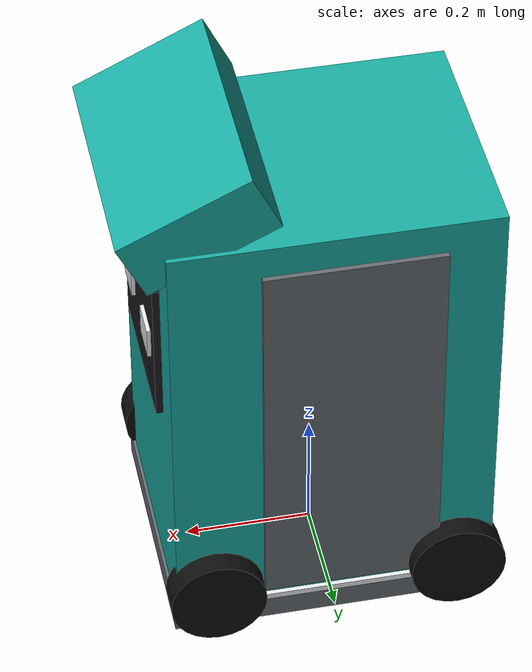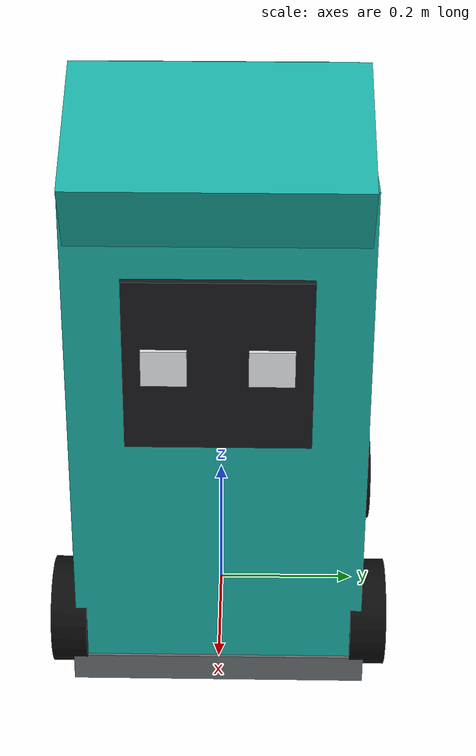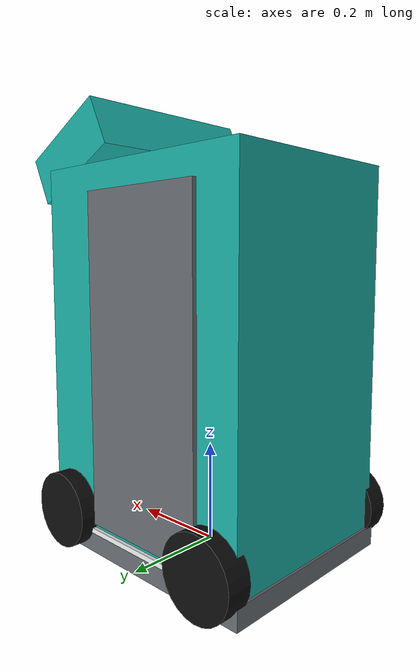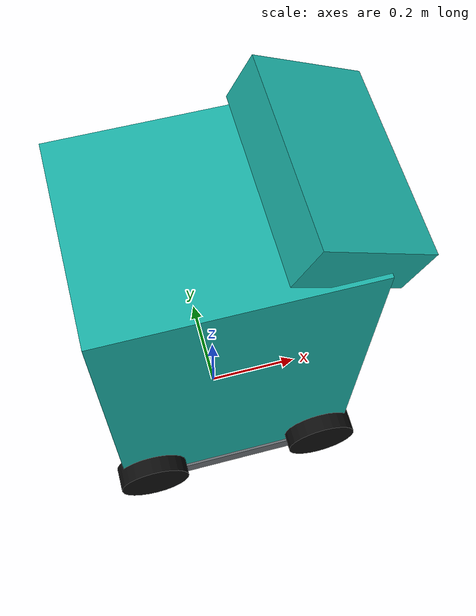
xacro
<?xml version="1.0"?>
<robot xmlns:xacro="http://www.ros.org/wiki/xacro">

  <xacro:property name="chassis_x" value="0.50"/>
  <xacro:property name="chassis_y" value="0.40"/>
  <xacro:property name="chassis_z" value="0.75"/>
  <xacro:property name="chassis_mass" value="35.0"/>

  <xacro:property name="wheel_radius" value="0.075"/>
  <xacro:property name="wheel_width" value="0.05"/>
  <xacro:property name="wheel_mass" value="1.2"/>

  <!-- half-distances between wheel contact points -->
  <xacro:property name="wheel_sep_x" value="0.19"/>
  <xacro:property name="wheel_sep_y" value="0.21"/>

  <material name="libbot_body_teal">
    <color rgba="0.10 0.68 0.64 1.0"/>
  </material>
  <material name="libbot_body_grey">
    <color rgba="0.40 0.42 0.44 1.0"/>
  </material>
  <material name="libbot_panel_dark">
    <color rgba="0.10 0.10 0.11 1.0"/>
  </material>
  <material name="libbot_wheel_black">
    <color rgba="0.05 0.05 0.05 1.0"/>
  </material>
  <material name="libbot_seam_white">
    <color rgba="0.92 0.93 0.94 1.0"/>
  </material>

  <xacro:macro name="box_inertia" params="mass x y z">
    <inertia
      ixx="${mass/12.0*(y*y+z*z)}" ixy="0.0" ixz="0.0"
      iyy="${mass/12.0*(x*x+z*z)}" iyz="0.0"
      izz="${mass/12.0*(x*x+y*y)}"/>
  </xacro:macro>

  <xacro:macro name="cylinder_inertia" params="mass r h">
    <inertia
      ixx="${mass/12.0*(3*r*r+h*h)}" ixy="0.0" ixz="0.0"
      iyy="${mass/12.0*(3*r*r+h*h)}" iyz="0.0"
      izz="${mass/2.0*r*r}"/>
  </xacro:macro>

  <!-- base_footprint: ground projection, required by nav2 / robot_localization conventions -->
  <link name="base_footprint"/>

  <joint name="base_footprint_joint" type="fixed">
    <parent link="base_footprint"/>
    <child link="base_link"/>
    <origin xyz="0 0 ${chassis_z/2}" rpy="0 0 0"/>
  </joint>

  <link name="base_link">
    <visual>
      <origin xyz="0 0 0" rpy="0 0 0"/>
      <geometry>
        <box size="${chassis_x} ${chassis_y} ${chassis_z}"/>
      </geometry>
      <material name="libbot_body_teal"/>
    </visual>
    <collision>
      <origin xyz="0 0 0" rpy="0 0 0"/>
      <geometry>
        <box size="${chassis_x} ${chassis_y} ${chassis_z}"/>
      </geometry>
    </collision>
    <inertial>
      <origin xyz="0 0 -0.25" rpy="0 0 0"/>
      <mass value="${chassis_mass}"/>
      <inertia ixx="6.0" ixy="0.0" ixz="0.0" iyy="8.0" iyz="0.0" izz="1.196"/>
    </inertial>
  </link>

  <!-- Dark grey skirt band around the lower chassis, like the reference
       robot's lower bumper/trim band. -->
  <link name="chassis_skirt_link">
    <visual>
      <geometry><box size="${chassis_x + 0.01} ${chassis_y + 0.01} 0.04"/></geometry>
      <material name="libbot_body_grey"/>
    </visual>
  </link>
  <joint name="chassis_skirt_joint" type="fixed">
    <parent link="base_link"/>
    <child link="chassis_skirt_link"/>
    <origin xyz="0 0 ${-chassis_z/2 + 0.02}" rpy="0 0 0"/>
  </joint>

  <!-- Seam line between the grey skirt and the teal shell. -->
  <link name="deck_stripe_link">
    <visual>
      <geometry><box size="${chassis_x + 0.005} 0.015 0.01"/></geometry>
      <material name="libbot_seam_white"/>
    </visual>
  </link>
  <joint name="deck_stripe_joint" type="fixed">
    <parent link="base_link"/>
    <child link="deck_stripe_link"/>
    <origin xyz="0 ${chassis_y/2} ${-chassis_z/2 + 0.045}" rpy="0 0 0"/>
  </joint>

  <!-- Sloped front-top fascia (a rotated box, approximating the
       reference's angled canopy front) sitting proud of the main box on
       the forward edge. -->
  <link name="chassis_fascia_link">
    <visual>
      <geometry><box size="0.22 ${chassis_y*0.96} 0.10"/></geometry>
      <material name="libbot_body_teal"/>
    </visual>
  </link>
  <joint name="chassis_fascia_joint" type="fixed">
    <parent link="base_link"/>
    <child link="chassis_fascia_link"/>
    <origin xyz="${chassis_x/2 - 0.05} 0 ${chassis_z/2 + 0.03}" rpy="0 0.45 0"/>
  </joint>

  <link name="chassis_face_link">
    <visual>
      <geometry><box size="0.02 ${chassis_y*0.62} ${chassis_z*0.32}"/></geometry>
      <material name="libbot_panel_dark"/>
    </visual>
  </link>
  <joint name="chassis_face_joint" type="fixed">
    <parent link="base_link"/>
    <child link="chassis_face_link"/>
    <origin xyz="${chassis_x/2 + 0.001} 0 ${chassis_z*0.18}" rpy="0 0 0"/>
  </joint>

  <xacro:macro name="face_eye" params="prefix y_off">
    <link name="face_eye_${prefix}_link">
      <visual>
        <geometry><box size="0.01 0.06 0.05"/></geometry>
        <material name="libbot_seam_white"/>
      </visual>
    </link>
    <joint name="face_eye_${prefix}_joint" type="fixed">
      <parent link="chassis_face_link"/>
      <child link="face_eye_${prefix}_link"/>
      <origin xyz="0.011 ${y_off} 0.0" rpy="0 0 0"/>
    </joint>
  </xacro:macro>
  <xacro:face_eye prefix="left"  y_off="0.07"/>
  <xacro:face_eye prefix="right" y_off="-0.07"/>

  <!-- Grey side compartment panel, like the reference's large flat side
       door, mounted flush on the +Y side. -->
  <link name="chassis_side_panel_link">
    <visual>
      <geometry><box size="${chassis_x*0.55} 0.015 ${chassis_z*0.85}"/></geometry>
      <material name="libbot_body_grey"/>
    </visual>
  </link>
  <joint name="chassis_side_panel_joint" type="fixed">
    <parent link="base_link"/>
    <child link="chassis_side_panel_link"/>
    <origin xyz="${-chassis_x*0.05} ${chassis_y/2 + 0.001} 0.005" rpy="0 0 0"/>
  </joint>

  <gazebo reference="chassis_skirt_link"><material>Gazebo/Grey</material></gazebo>
  <gazebo reference="deck_stripe_link"><material>Gazebo/White</material></gazebo>
  <gazebo reference="chassis_fascia_link"><material>Gazebo/Turquoise</material></gazebo>
  <gazebo reference="chassis_face_link"><material>Gazebo/Black</material></gazebo>
  <gazebo reference="face_eye_left_link"><material>Gazebo/White</material></gazebo>
  <gazebo reference="face_eye_right_link"><material>Gazebo/White</material></gazebo>
  <gazebo reference="chassis_side_panel_link"><material>Gazebo/Grey</material></gazebo>

  <!-- ============ wheels ============ -->
  <xacro:macro name="mecanum_wheel" params="prefix x_off y_off roller_sign">
    <link name="${prefix}_wheel_link">
      <visual>
        <origin xyz="0 0 0" rpy="1.5707963 0 0"/>
        <geometry>
          <cylinder radius="${wheel_radius}" length="${wheel_width}"/>
        </geometry>
        <material name="libbot_wheel_black"/>
      </visual>
      <inertial>
        <origin xyz="0 0 0" rpy="0 0 0"/>
        <mass value="${wheel_mass}"/>
        <xacro:cylinder_inertia mass="${wheel_mass}" r="${wheel_radius}" h="${wheel_width}"/>
      </inertial>
    </link>

    <joint name="${prefix}_wheel_joint" type="continuous">
      <parent link="base_link"/>
      <child link="${prefix}_wheel_link"/>
      <origin xyz="${x_off} ${y_off} ${wheel_radius - chassis_z/2}" rpy="0 0 0"/>
      <axis xyz="0 1 0"/>
      <limit effort="20.0" velocity="30.0"/>
      <dynamics damping="0.15" friction="0.05"/>
    </joint>

    <gazebo reference="${prefix}_wheel_link">
      <material>Gazebo/FlatBlack</material>
    </gazebo>
  </xacro:macro>

  <xacro:mecanum_wheel prefix="front_left"  x_off="${wheel_sep_x}"  y_off="${wheel_sep_y}"  roller_sign="1"/>
  <xacro:mecanum_wheel prefix="front_right" x_off="${wheel_sep_x}"  y_off="${-wheel_sep_y}" roller_sign="-1"/>
  <xacro:mecanum_wheel prefix="rear_left"   x_off="${-wheel_sep_x}" y_off="${wheel_sep_y}"  roller_sign="-1"/>
  <xacro:mecanum_wheel prefix="rear_right"  x_off="${-wheel_sep_x}" y_off="${-wheel_sep_y}" roller_sign="1"/>

  <gazebo reference="base_link">
    <material>Gazebo/Turquoise</material>
  </gazebo>

  <link name="skid_plate_link">
    <collision>
      <geometry><box size="${chassis_x*0.95} ${chassis_y*0.95} 0.01"/></geometry>
    </collision>
    <inertial>
      <mass value="0.5"/>
      <inertia ixx="0.001" ixy="0" ixz="0" iyy="0.001" iyz="0" izz="0.001"/>
    </inertial>
  </link>

  <joint name="skid_plate_joint" type="fixed">
    <parent link="base_link"/>
    <child link="skid_plate_link"/>
    <origin xyz="0 0 ${-chassis_z/2 + 0.005}" rpy="0 0 0"/>
  </joint>

  <gazebo reference="skid_plate_link">
    <mu1>0.02</mu1>
    <mu2>0.02</mu2>
    <kp>1e5</kp>
    <kd>50.0</kd>
    <minDepth>0.001</minDepth>
  </gazebo>

</robot>
